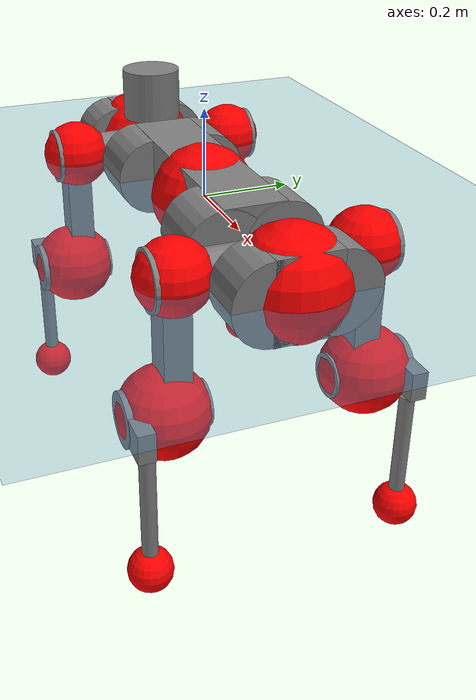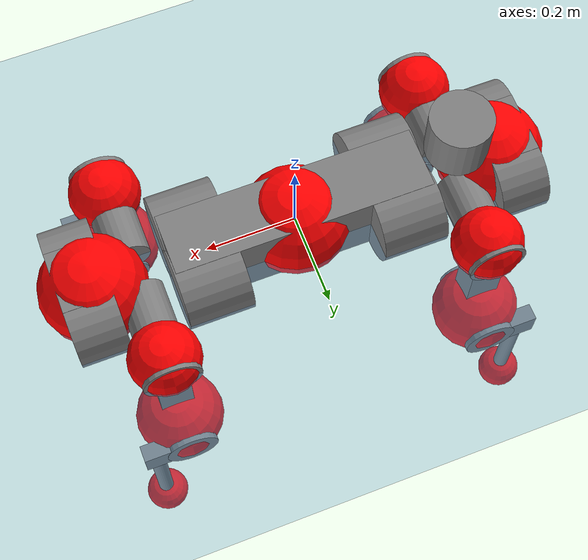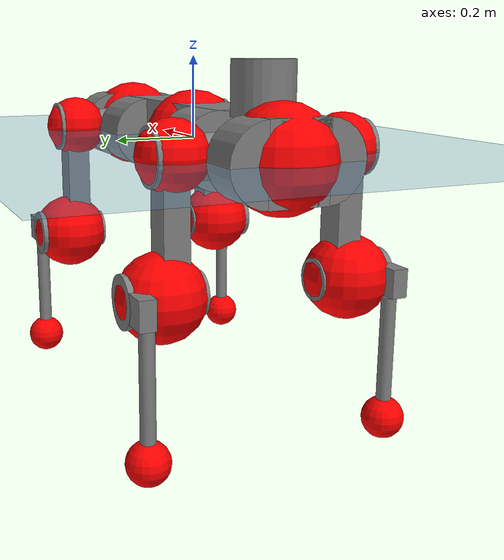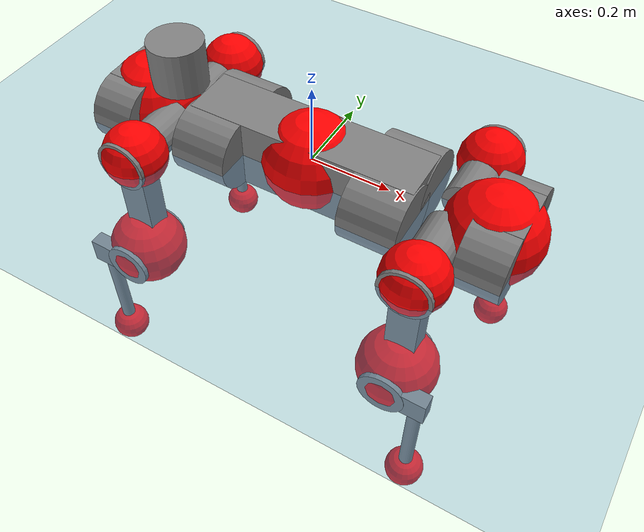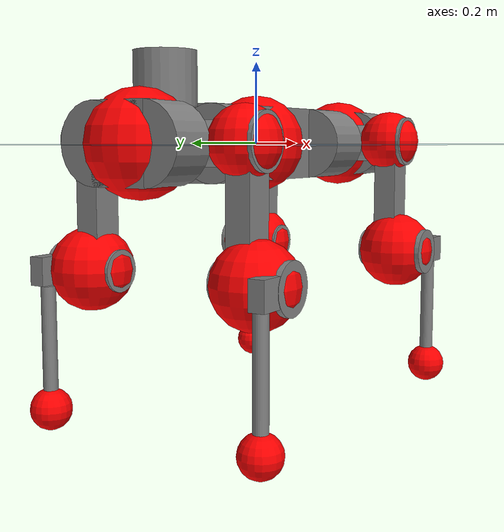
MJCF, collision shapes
<mujoco model="anymal_c">
  <compiler angle="radian" assetdir="assets" balanceinertia="true" inertiafromgeom="false"/>

  <option timestep="0.005" density="1.2" viscosity="2e-05"/>

  <size nkey="1"/>

  <visual>
    <quality shadowsize="8192"/>
    <map shadowclip="0.5"/>
  </visual>

  <default>
    <default class="/">
      <material specular="0" shininess="0.25"/>
      <geom contype="0" conaffinity="0" group="1" solref="-1000 -80"/>
      <site size="0.01 0.005 0.005" group="5"/>
      <general forcelimited="true" forcerange="-80 80" biastype="affine" gainprm="80" biasprm="0 -80 -2"/>
      <default class="anymal_c">
        <joint armature="0.01" damping="0.01" frictionloss="0.1"/>
        <default class="visual">
          <geom type="mesh" group="2"/>
          <default class="visual_zflip"/>
        </default>
        <default class="collision">
          <geom type="cylinder" group="3"/>
          <default class="foot">
            <geom size="0.03 0 0" type="sphere" condim="6" priority="1" friction="0.8 0.02 0.01" solimp="0.015 1 0.03"/>
          </default>
        </default>
      </default>
      <default class="reward_collision_sphere">
        <geom group="5" rgba="1 0 0 1"/>
      </default>
    </default>
  </default>

  <asset>
    <texture type="skybox" colorspace="auto" name="//unnamed_texture_0" builtin="gradient" rgb1="0.95 0.95 0.95" rgb2="0.95 0.95 0.95" width="100" height="600"/>
    <texture type="2d" colorspace="auto" name="texplane" builtin="checker" rgb1="0.345 0.575 0.748" rgb2="0.345 0.575 0.748" markrgb="1 1 1" width="512" height="512"/>
    <texture type="2d" colorspace="linear" name="base" file="base.png"/>
    <texture type="2d" colorspace="linear" name="top_shell" file="top_shell.png"/>
    <texture type="2d" colorspace="linear" name="bottom_shell" file="bottom_shell.png"/>
    <texture type="2d" colorspace="linear" name="remote" file="remote.png"/>
    <texture type="2d" colorspace="linear" name="hatch" file="hatch.png"/>
    <texture type="2d" colorspace="linear" name="handle" file="handle.png"/>
    <texture type="2d" colorspace="linear" name="face" file="face.png"/>
    <texture type="2d" colorspace="linear" name="battery" file="battery.png"/>
    <texture type="2d" colorspace="linear" name="lidar_cage" file="lidar_cage.png"/>
    <texture type="2d" colorspace="linear" name="depth_camera" file="depth_camera.png"/>
    <texture type="2d" colorspace="linear" name="wide_angle_camera" file="wide_angle_camera.png"/>
    <texture type="2d" colorspace="linear" name="lidar" file="lidar.png"/>
    <texture type="2d" colorspace="linear" name="drive" file="drive.png"/>
    <texture type="2d" colorspace="linear" name="hip_l" file="hip_l.png"/>
    <texture type="2d" colorspace="linear" name="shank_l" file="shank_l.png"/>
    <texture type="2d" colorspace="linear" name="foot" file="foot.png"/>
    <texture type="2d" colorspace="linear" name="thigh" file="thigh.png"/>
    <texture type="2d" colorspace="linear" name="shank_r" file="shank_r.png"/>
    <texture type="2d" colorspace="linear" name="hip_r" file="hip_r.png"/>
    <material name="MatPlane" class="/" texture="texplane" texuniform="true" texrepeat="2 2" specular="0.9" shininess="0.5"/>
    <material name="black_plastic" class="/" rgba="0.007 0.007 0.007 1"/>
    <material name="green" class="/" rgba="0.052 0.178 0.033 1"/>
    <material name="red" class="/" rgba="0.178 0.006 0.005 1"/>
    <material name="yellow" class="/" rgba="0.178 0.119 0.006 1"/>
    <material name="lwl" class="/" rgba="0.8 0.8 0.8 1"/>
    <material name="base" class="/" texture="base"/>
    <material name="top_shell" class="/" texture="top_shell"/>
    <material name="bottom_shell" class="/" texture="bottom_shell"/>
    <material name="hip_l" class="/" texture="hip_l"/>
    <material name="thigh" class="/" texture="thigh"/>
    <material name="shank_l" class="/" texture="shank_l"/>
    <material name="foot" class="/" texture="foot"/>
    <material name="hip_r" class="/" texture="hip_r"/>
    <material name="shank" class="/" texture="shank_r"/>
    <material name="hatch" class="/" texture="hatch"/>
    <material name="remote" class="/" texture="remote"/>
    <material name="handle" class="/" texture="handle"/>
    <material name="face" class="/" texture="face"/>
    <material name="depth_camera" class="/" texture="depth_camera"/>
    <material name="wide_angle_camera" class="/" texture="wide_angle_camera"/>
    <material name="battery" class="/" texture="battery"/>
    <material name="lidar_cage" class="/" texture="lidar_cage"/>
    <material name="lidar" class="/" texture="lidar"/>
    <material name="drive" class="/" texture="drive"/>
    <mesh name="base_0" class="/" file="base_0.obj"/>
    <mesh name="base_1" class="/" file="base_1.obj"/>
    <mesh name="base_2" class="/" file="base_2.obj"/>
    <mesh name="base_3" class="/" file="base_3.obj"/>
    <mesh name="base_4" class="/" file="base_4.obj"/>
    <mesh name="base_5" class="/" file="base_5.obj"/>
    <mesh name="top_shell" class="/" file="top_shell.obj"/>
    <mesh name="bottom_shell" class="/" file="bottom_shell.obj"/>
    <mesh name="remote" class="/" file="remote.obj"/>
    <mesh name="handle" class="/" file="handle.obj"/>
    <mesh name="face" class="/" file="face.obj"/>
    <mesh name="wide_angle_camera" class="/" file="wide_angle_camera.obj"/>
    <mesh name="depth_camera" class="/" file="depth_camera.obj"/>
    <mesh name="battery" class="/" file="battery.obj"/>
    <mesh name="lidar_cage" class="/" file="lidar_cage.obj"/>
    <mesh name="lidar" class="/" file="lidar.obj"/>
    <mesh name="drive" class="/" file="drive.obj"/>
    <mesh name="hip_l" class="/" file="hip_l.obj"/>
    <mesh name="thigh" class="/" file="thigh.obj"/>
    <mesh name="shank_l" class="/" file="shank_l.obj"/>
    <mesh name="foot" class="/" file="foot.obj"/>
    <mesh name="hip_r" class="/" file="hip_r.obj"/>
    <mesh name="hatch" class="/" file="hatch.obj"/>
    <mesh name="shank_r" class="/" file="shank_r.obj"/>
  </asset>

  <worldbody>
    <geom name="floor" class="/" size="100 100 0.125" type="plane" group="0" material="MatPlane"/>
    <light name="toplight_shadow" class="/" pos="0 0 5" dir="0.0990148 0.0990148 -0.990148" type="directional" ambient="0.04 0.04 0.04" diffuse="0.55 0.55 0.55" specular="0.12 0.12 0.12"/>
    <light name="toplight_fill" class="/" pos="0 0 5" dir="0.0990148 0.0990148 -0.990148" type="directional" castshadow="false" ambient="0.04 0.04 0.04" diffuse="0.3 0.3 0.3" specular="0.08 0.08 0.08"/>
    <body name="trunk" childclass="anymal_c" pos="-0.000403999 0.000120752 0.000229609" quat="1 0.000172972 8.08859e-05 -0.000117884">
      <inertial pos="0.00239201 -6.63778e-05 0.0511647" quat="0.501952 0.500104 0.498186 0.499751" mass="18.0844" diaginertia="0.640546 0.401331 0.258256"/>
      <joint name="//unnamed_joint_0" type="free" armature="0" damping="0" frictionloss="0"/>
      <geom name="//unnamed_geom_1" class="visual" material="green" mesh="base_0"/>
      <geom name="//unnamed_geom_2" class="visual" material="yellow" mesh="base_1"/>
      <geom name="//unnamed_geom_3" class="visual" material="red" mesh="base_2"/>
      <geom name="//unnamed_geom_4" class="visual" material="black_plastic" mesh="base_3"/>
      <geom name="//unnamed_geom_5" class="visual" material="lwl" mesh="base_4"/>
      <geom name="//unnamed_geom_6" class="visual" material="base" mesh="base_5"/>
      <geom name="trunk_1" class="collision" size="0.285902 0.0690109 0.0887283" type="box"/>
      <geom name="trunk_2" class="collision" size="0.0887283 0.0714756" pos="0.21828 0.0643076 0" quat="0.707107 0 0.707107 0"/>
      <geom name="trunk_3" class="collision" size="0.0887283 0.0714756" pos="-0.21828 0.0643076 0" quat="0.707107 0 0.707107 0"/>
      <geom name="trunk_4" class="collision" size="0.0887283 0.0714756" pos="0.21828 -0.0643076 0" quat="0.707107 0 0.707107 0"/>
      <geom name="trunk_5" class="collision" size="0.0887283 0.0714756" pos="-0.21828 -0.0643076 0" quat="0.707107 0 0.707107 0"/>
      <geom name="//unnamed_geom_12" class="visual" material="top_shell" mesh="top_shell"/>
      <geom name="//unnamed_geom_13" class="visual" material="bottom_shell" mesh="bottom_shell"/>
      <geom name="//unnamed_geom_14" class="visual" material="remote" mesh="remote"/>
      <geom name="//unnamed_geom_15" class="visual" material="handle" mesh="handle"/>
      <geom name="//unnamed_geom_16" class="visual" pos="0.415986 0 0" quat="1 0 0 0" material="face" mesh="face"/>
      <geom name="trunk_6" class="collision" size="0.0542228 0.0690109 0.0887283" pos="0.471184 0 0" type="box"/>
      <geom name="//unnamed_geom_18" class="collision" size="0.0887283 0.0542228" pos="0.471184 0.0643076 0" quat="0.707107 0 0.707107 0"/>
      <geom name="//unnamed_geom_19" class="collision" size="0.0887283 0.0542228" pos="0.471184 -0.0643076 0" quat="0.707107 0 0.707107 0"/>
      <geom name="//unnamed_geom_20" class="visual" pos="0.463307 0 -0.0304734" quat="0.965926 0 0.258819 0" material="depth_camera" mesh="depth_camera"/>
      <geom name="//unnamed_geom_21" class="visual" pos="0.51484 0 0.0154991" material="wide_angle_camera" mesh="wide_angle_camera"/>
      <geom name="//unnamed_geom_22" class="visual_zflip" pos="-0.415986 0 0" quat="0 0 0 1" material="face" mesh="face"/>
      <geom name="trunk_7" class="collision" size="0.0542228 0.0690109 0.0887283" pos="-0.471184 0 0" quat="0 0 0 1" type="box"/>
      <geom name="//unnamed_geom_24" class="collision" size="0.0887283 0.0542228" pos="-0.471184 -0.0643076 0" quat="0 -0.707107 0 0.707107"/>
      <geom name="//unnamed_geom_25" class="collision" size="0.0887283 0.0542228" pos="-0.471184 0.0643076 0" quat="0 -0.707107 0 0.707107"/>
      <geom name="//unnamed_geom_26" class="visual" pos="-0.463307 0 -0.0304734" quat="0 -0.258819 0 0.965926" material="depth_camera" mesh="depth_camera"/>
      <geom name="//unnamed_geom_27" class="visual_zflip" pos="-0.51484 0 0.0154991" quat="0 0 0 1" material="wide_angle_camera" mesh="wide_angle_camera"/>
      <geom name="//unnamed_geom_28" class="visual" material="battery" mesh="battery"/>
      <geom name="//unnamed_geom_29" class="visual" pos="0 0.0691294 0.0298354" quat="0.683013 -0.183013 0.183013 0.683013" material="depth_camera" mesh="depth_camera"/>
      <geom name="//unnamed_geom_30" class="visual" pos="0 -0.0691294 0.0298354" quat="0.683013 0.183013 0.183013 -0.683013" material="depth_camera" mesh="depth_camera"/>
      <geom name="//unnamed_geom_31" class="visual" pos="-0.365305 0 0.0760978" quat="1 0 0 0" material="lidar_cage" mesh="lidar_cage"/>
      <geom name="trunk_8" class="collision" size="0.0690109 0.0591522" pos="-0.365305 0 0.138218"/>
      <geom name="//unnamed_geom_33" class="visual" pos="-0.365305 -3.33574e-05 0.147226" quat="0.707107 0 0 -0.707107" material="lidar" mesh="lidar"/>
      <geom name="//unnamed_geom_34" class="visual" pos="0.300975 0.0955841 -2.01248e-09" quat="0.258819 0.965926 0 0" material="drive" mesh="drive"/>
      <geom name="//unnamed_geom_35" class="visual" pos="0.300975 -0.0955841 2.01248e-09" quat="0.258819 -0.965926 0 0" material="drive" mesh="drive"/>
      <geom name="//unnamed_geom_36" class="visual" pos="-0.300975 0.0955841 2.01248e-09" quat="0 0 0.965926 -0.258819" material="drive" mesh="drive"/>
      <geom name="//unnamed_geom_37" class="visual" pos="-0.300975 -0.0955841 -2.01248e-09" quat="0 0 -0.965926 -0.258819" material="drive" mesh="drive"/>
      <geom name="//unnamed_geom_38" class="visual" pos="0.116416 0 0.0755801" quat="1 0 0 0" material="hatch" mesh="hatch"/>
      <geom name="//unnamed_geom_39" class="reward_collision_sphere" size="0.118304"/>
      <geom name="//unnamed_geom_40" class="reward_collision_sphere" size="0.118304" pos="0.451614 0 0"/>
      <geom name="//unnamed_geom_41" class="reward_collision_sphere" size="0.118304" pos="-0.451614 0 0"/>
      <site name="imu" pos="0.252094 0.00834035 0.0474846" size="0.0098587"/>
      <camera name="track" pos="0 -1.83736 0" quat="0.707107 0.707107 0 0" mode="trackcom"/>
      <camera name="ego_camera" pos="0.451614 0 -0.0414138" quat="-0.5 -0.5 0.5 0.5"/>
      <body name="LF_HIP" pos="0.301429 0.095845 0.000874892" quat="0.258559 0.965995 8.51174e-06 -3.86314e-05">
        <inertial pos="0.0570599 -0.0139274 -0.00838919" quat="-0.128533 0.709896 -0.135499 0.679093" mass="2.64797" diaginertia="0.00592927 0.0032482 0.00391973"/>
        <joint name="LF_HAA" pos="0 0 0" axis="0.999984 0.00459512 -0.00339105" range="-0.714278 0.489685" armature="0.00987341" damping="0.0112491" frictionloss="0.096842"/>
        <geom name="//unnamed_geom_42" class="visual" pos="0 -0.000118385 1.94446e-05" quat="0.258819 -0.965926 0 0" material="hip_l" mesh="hip_l"/>
        <geom name="//unnamed_geom_43" class="visual" pos="0.0601148 -0.0717654 -0.0422967" quat="0.183013 -0.683013 0.683013 0.183013" material="drive" mesh="drive"/>
        <geom name="//unnamed_geom_44" class="collision" size="0.0492935 0.0690109" pos="0.0601148 -0.0109872 -0.00714905" quat="-0.353553 -0.612372 0.612372 -0.353553"/>
        <body name="LF_THIGH" pos="0.0611342 -0.0670839 -0.0430841" quat="0.183039 -0.68298 0.683047 0.18298">
          <inertial pos="0.0310581 0.000126271 -0.254593" quat="0.993297 -0.00443856 -0.0800282 0.0832855" mass="2.92988" diaginertia="0.0307428 0.0194764 0.00494495"/>
          <joint name="LF_HFE" pos="0 0 0" axis="0.999994 -0.00159315 0.00320309" stiffness="0.00015624" range="-3.14032 3.13744" armature="0.00950307" damping="0.0123449" frictionloss="0.101933"/>
          <geom name="//unnamed_geom_45" class="visual" pos="0.0016893 2.66194e-06 0" quat="0.707107 0 0 -0.707107" material="thigh" mesh="thigh"/>
          <geom name="//unnamed_geom_46" class="collision" size="0.0640815 0.0394348" pos="0.0401434 0 0" quat="0.5 0.5 -0.5 -0.5"/>
          <geom name="//unnamed_geom_47" class="collision" size="0.0369701 0.0295761 0.139317" pos="0.0301076 0 -0.146309" quat="0.707107 0 0 -0.707107" type="box"/>
          <geom name="//unnamed_geom_48" class="visual" pos="0.10066 0 -0.295073" quat="1 0 0 0" material="drive" mesh="drive"/>
          <geom name="//unnamed_geom_49" class="collision" size="0.0492935 0.0690109" pos="0.0304087 0 -0.295073" quat="0.707107 0 0.707107 0"/>
          <geom name="//unnamed_geom_50" class="reward_collision_sphere" size="0.0788696" pos="0.0250897 0 0"/>
          <body name="LF_SHANK" pos="0.100727 -0.000731997 -0.295653" quat="1 -0.000293932 3.31643e-05 -0.000348026">
            <inertial pos="0.00513443 -0.0566406 -0.0836593" quat="0.99288 -0.116272 -0.000784624 -0.0258847" mass="0.55327" diaginertia="0.0103566 0.00597974 0.00132945"/>
            <joint name="LF_KFE" pos="0 0 0" axis="0.999999 0.00100759 0.00124842" range="-3.14205 3.13811" armature="0.00977957" damping="0.0128277" frictionloss="0.0970851"/>
            <geom name="//unnamed_geom_51" class="visual" pos="0.000550845 0.00293713 0" quat="0.707107 0 0 -0.707107" material="shank_l" mesh="shank_l"/>
            <geom name="LF_kfe_act" class="collision" size="0.0591522 0.0197174" pos="0.0200717 0 0" quat="0.5 0.5 -0.5 -0.5"/>
            <geom name="//unnamed_geom_53" class="collision" size="0.0566865 0.0332731 0.0187315" pos="0.0200717 -0.0528232 0" quat="0.5 0.5 -0.5 -0.5" type="box"/>
            <geom name="//unnamed_geom_54" class="visual" pos="0.0130967 -0.0798514 -0.349915" quat="0.382683 0 0 -0.92388" material="foot" mesh="foot"/>
            <geom name="LF_calf" class="collision" size="0.0172527 0.139256" pos="0.0130968 -0.0807979 -0.174958" quat="0.707107 0 0 -0.707107"/>
            <geom name="LF_foot" class="foot" size="0.0295542" pos="0.0130968 -0.0807979 -0.32662" quat="0.707107 0 0 -0.707107"/>
            <geom name="//unnamed_geom_57" class="reward_collision_sphere" size="0.098587" pos="-0.0501793 0 0"/>
            <geom name="//unnamed_geom_58" class="reward_collision_sphere" size="0.0492935" pos="0.0130968 -0.0807979 -0.32662"/>
            <site name="LF_foot" class="foot" pos="0.0130968 -0.0807979 -0.32662" quat="0.707107 0 0 -0.707107" size="0.0098587"/>
          </body>
        </body>
      </body>
      <body name="RF_HIP" pos="0.301414 -0.0956986 0.00069195" quat="0.258899 -0.965904 0.000205986 7.70559e-05">
        <inertial pos="0.0571898 0.0148441 -0.00846035" quat="0.136464 0.676536 0.129869 0.711907" mass="2.6608" diaginertia="0.00597257 0.00325293 0.00391506"/>
        <joint name="RF_HAA" pos="0 0 0" axis="1 2.3558e-05 -0.00030186" range="-0.49044 0.717821" armature="0.00989607" damping="0.00855383" frictionloss="0.101776"/>
        <geom name="//unnamed_geom_59" class="visual" pos="0 0.000118384 1.94446e-05" quat="0.258819 0.965926 0 0" material="hip_r" mesh="hip_r"/>
        <geom name="//unnamed_geom_60" class="visual" pos="0.0601148 0.0717654 -0.0422967" quat="0.183013 0.683013 0.683013 -0.183013" material="drive" mesh="drive"/>
        <geom name="//unnamed_geom_61" class="collision" size="0.0492935 0.0690109" pos="0.0601148 0.0109872 -0.00714905" quat="-0.353553 0.612372 0.612372 0.353553"/>
        <body name="RF_THIGH" pos="0.0604731 0.0669153 -0.0441832" quat="0.183267 0.682961 0.683031 -0.182885">
          <inertial pos="0.0314298 0.000520365 -0.253723" quat="0.992771 -0.00515991 -0.0807496 0.0886462" mass="2.95597" diaginertia="0.030767 0.019659 0.00500476"/>
          <joint name="RF_HFE" pos="0 0 0" axis="1 -0.000453341 0.000567589" stiffness="0.00719991" range="-3.13806 3.1301" armature="0.00961102" damping="0.011956" frictionloss="0.0997283"/>
          <geom name="//unnamed_geom_62" class="visual" pos="0.0016893 2.66194e-06 0" quat="0.707107 0 0 -0.707107" material="thigh" mesh="thigh"/>
          <geom name="//unnamed_geom_63" class="collision" size="0.0640815 0.0394348" pos="0.0401434 0 0" quat="0.5 0.5 0.5 0.5"/>
          <geom name="//unnamed_geom_64" class="collision" size="0.0369701 0.0295761 0.139317" pos="0.0301076 0 -0.146309" quat="0.707107 0 0 0.707107" type="box"/>
          <geom name="//unnamed_geom_65" class="visual" pos="0.10066 0 -0.295073" quat="1 0 0 0" material="drive" mesh="drive"/>
          <geom name="//unnamed_geom_66" class="collision" size="0.0492935 0.0690109" pos="0.0304087 0 -0.295073" quat="0.707107 0 0.707107 0"/>
          <geom name="//unnamed_geom_67" class="reward_collision_sphere" size="0.0788696" pos="0.0250897 0 0"/>
          <body name="RF_SHANK" pos="0.100288 0.000640753 -0.295934" quat="1 6.02484e-05 -0.000126281 4.78674e-05">
            <inertial pos="0.00639461 0.0571524 -0.0839345" quat="0.993012 0.115324 -0.00142711 0.0250189" mass="0.568541" diaginertia="0.0102928 0.00600504 0.00133574"/>
            <joint name="RF_KFE" pos="0 0 0" axis="1 -0.000208315 -0.000219008" range="-3.13099 3.14104" armature="0.00982965" damping="0.00749403" frictionloss="0.0962663"/>
            <geom name="//unnamed_geom_68" class="visual" pos="0.000550842 -0.00293713 0" quat="0.707107 0 0 0.707107" material="shank" mesh="shank_r"/>
            <geom name="RF_kfe_act" class="collision" size="0.0591522 0.0197174" pos="0.0200717 0 0" quat="0.5 0.5 0.5 0.5"/>
            <geom name="//unnamed_geom_70" class="collision" size="0.0566865 0.0332731 0.0187315" pos="0.0200717 0.0528232 0" quat="0.5 0.5 0.5 0.5" type="box"/>
            <geom name="//unnamed_geom_71" class="visual" pos="0.0130969 0.0798514 -0.349915" quat="0.382683 0 0 0.92388" material="foot" mesh="foot"/>
            <geom name="RF_calf" class="collision" size="0.0172527 0.139256" pos="0.0130968 0.0807979 -0.174958" quat="0.707107 0 0 0.707107"/>
            <geom name="RF_foot" class="foot" size="0.0297587" pos="0.0130968 0.0807979 -0.32662" quat="0.707107 0 0 0.707107"/>
            <geom name="//unnamed_geom_74" class="reward_collision_sphere" size="0.098587" pos="-0.0501793 0 0"/>
            <geom name="//unnamed_geom_75" class="reward_collision_sphere" size="0.0492935" pos="0.0130968 0.0807979 -0.32662"/>
            <site name="RF_foot" class="foot" pos="0.0130968 0.0807979 -0.32662" quat="0.707107 0 0 0.707107" size="0.0098587"/>
          </body>
        </body>
      </body>
      <body name="LH_HIP" pos="-0.299628 0.0963814 0.000650005" quat="-7.11606e-05 -5.4631e-05 0.965894 -0.258939">
        <inertial pos="0.0569805 0.0132438 -0.00873215" quat="0.134168 0.68089 0.127875 0.708544" mass="2.6799" diaginertia="0.00593815 0.00322571 0.0039489"/>
        <joint name="LH_HAA" pos="0 0 0" axis="1 -0.000694176 -0.000193457" range="-0.510813 0.723275" armature="0.0098369" damping="0.00887455" frictionloss="0.0970517"/>
        <geom name="//unnamed_geom_76" class="visual" pos="0 0.000118384 1.94446e-05" quat="-0.258819 -0.965926 0 0" material="hip_r" mesh="hip_r"/>
        <geom name="//unnamed_geom_77" class="visual" pos="0.0601148 0.0717654 -0.0422967" quat="0.183013 0.683013 0.683013 -0.183013" material="drive" mesh="drive"/>
        <geom name="//unnamed_geom_78" class="collision" size="0.0492935 0.0690109" pos="0.0601148 0.0109872 -0.00714905" quat="-0.353553 0.612372 0.612372 0.353553"/>
        <body name="LH_THIGH" pos="0.0591829 0.0664165 -0.0441346" quat="0.182981 0.683135 0.682912 -0.182963">
          <inertial pos="0.0313227 -4.11593e-05 -0.254384" quat="0.993181 -0.00345357 -0.077335 0.0871659" mass="2.92262" diaginertia="0.0307872 0.0193133 0.00489946"/>
          <joint name="LH_HFE" pos="0 0 0" axis="0.999995 -0.00113947 0.00280932" range="-3.15895 3.12372" armature="0.00973302" damping="0.00994759" frictionloss="0.0955229"/>
          <geom name="//unnamed_geom_79" class="visual" pos="0.0016893 2.66194e-06 0" quat="0.707107 0 0 -0.707107" material="thigh" mesh="thigh"/>
          <geom name="//unnamed_geom_80" class="collision" size="0.0640815 0.0394348" pos="0.0401434 0 0" quat="0.5 0.5 -0.5 -0.5"/>
          <geom name="//unnamed_geom_81" class="collision" size="0.0369701 0.0295761 0.139317" pos="0.0301076 0 -0.146309" quat="0.707107 0 0 -0.707107" type="box"/>
          <geom name="//unnamed_geom_82" class="visual" pos="0.10066 0 -0.295073" quat="1 0 0 0" material="drive" mesh="drive"/>
          <geom name="//unnamed_geom_83" class="collision" size="0.0492935 0.0690109" pos="0.0304087 0 -0.295073" quat="0.707107 0 0.707107 0"/>
          <geom name="//unnamed_geom_84" class="reward_collision_sphere" size="0.0788696" pos="0.0250897 0 0"/>
          <body name="LH_SHANK" pos="0.101261 -0.0014362 -0.295553" quat="1 0.000291887 0.000145903 -8.17342e-05">
            <inertial pos="0.00519304 0.0562323 -0.0828205" quat="0.993195 0.114062 -0.00197563 0.0234566" mass="0.564722" diaginertia="0.0103017 0.00604872 0.00133244"/>
            <joint name="LH_KFE" pos="0 0 0" axis="0.999995 -0.00143584 -0.00276824" stiffness="0.000554741" range="-3.13781 3.1569" armature="0.0100728" damping="0.00907459" frictionloss="0.102505"/>
            <geom name="//unnamed_geom_85" class="visual" pos="0.000550842 -0.00293713 0" quat="-0.707107 0 0 -0.707107" material="shank" mesh="shank_r"/>
            <geom name="LH_kfe_act" class="collision" size="0.0591522 0.0197174" pos="0.0200717 0 0" quat="0.5 0.5 -0.5 -0.5"/>
            <geom name="//unnamed_geom_87" class="collision" size="0.0566865 0.0332731 0.0187315" pos="0.0200717 0.0528232 0" quat="0.5 0.5 -0.5 -0.5" type="box"/>
            <geom name="//unnamed_geom_88" class="visual" pos="0.0130969 0.0798514 -0.349915" quat="-0.382683 0 0 -0.92388" material="foot" mesh="foot"/>
            <geom name="LH_calf" class="collision" size="0.0172527 0.139256" pos="0.0130968 0.0807979 -0.174958" quat="0.707107 0 0 -0.707107"/>
            <geom name="LH_foot" class="foot" size="0.0318431" pos="0.0130968 0.0807979 -0.32662" quat="0.707107 0 0 -0.707107"/>
            <geom name="//unnamed_geom_91" class="reward_collision_sphere" size="0.098587" pos="-0.0501793 0 0"/>
            <geom name="//unnamed_geom_92" class="reward_collision_sphere" size="0.0492935" pos="0.0130968 0.0807979 -0.32662"/>
            <site name="LH_foot" class="foot" pos="0.0130968 0.0807979 -0.32662" quat="0.707107 0 0 -0.707107" size="0.0098587"/>
          </body>
        </body>
      </body>
      <body name="RH_HIP" pos="-0.301027 -0.0954285 -1.63514e-05" quat="-1.77353e-06 1.79712e-06 -0.965929 -0.258808">
        <inertial pos="0.0560115 -0.0146198 -0.00872677" quat="-0.1281 0.709786 -0.135286 0.679332" mass="2.66081" diaginertia="0.0058989 0.00317758 0.00386725"/>
        <joint name="RH_HAA" pos="0 0 0" axis="0.999997 0.00182841 0.00160812" range="-0.723146 0.498548" armature="0.00969107" damping="0.0091698" frictionloss="0.0995594"/>
        <geom name="//unnamed_geom_93" class="visual" pos="0 -0.000118385 1.94446e-05" quat="-0.258819 0.965926 0 0" material="hip_l" mesh="hip_l"/>
        <geom name="//unnamed_geom_94" class="visual" pos="0.0601148 -0.0717654 -0.0422967" quat="-0.183013 0.683013 -0.683013 -0.183013" material="drive" mesh="drive"/>
        <geom name="//unnamed_geom_95" class="collision" size="0.0492935 0.0690109" pos="0.0601148 -0.0109872 -0.00714905" quat="0.353553 0.612372 -0.612372 0.353553"/>
        <body name="RH_THIGH" pos="0.0600467 -0.0668175 -0.0439446" quat="-0.182878 0.6831 -0.682999 -0.182873">
          <inertial pos="0.0316415 0.000284437 -0.253803" quat="0.993386 -0.00464554 -0.0800456 0.0821858" mass="2.92515" diaginertia="0.0307661 0.0193953 0.00500786"/>
          <joint name="RH_HFE" pos="0 0 0" axis="0.999999 -0.000521777 0.00103002" range="-3.13875 3.14538" armature="0.00957227" damping="0.00870622" frictionloss="0.100599"/>
          <geom name="//unnamed_geom_96" class="visual" pos="0.0016893 2.66194e-06 0" quat="0.707107 0 0 -0.707107" material="thigh" mesh="thigh"/>
          <geom name="//unnamed_geom_97" class="collision" size="0.0640815 0.0394348" pos="0.0401434 0 0" quat="0.5 0.5 0.5 0.5"/>
          <geom name="//unnamed_geom_98" class="collision" size="0.0369701 0.0295761 0.139317" pos="0.0301076 0 -0.146309" quat="0.707107 0 0 0.707107" type="box"/>
          <geom name="//unnamed_geom_99" class="visual" pos="0.10066 0 -0.295073" quat="1 0 0 0" material="drive" mesh="drive"/>
          <geom name="//unnamed_geom_100" class="collision" size="0.0492935 0.0690109" pos="0.0304087 0 -0.295073" quat="0.707107 0 0.707107 0"/>
          <geom name="//unnamed_geom_101" class="reward_collision_sphere" size="0.0788696" pos="0.0250897 0 0"/>
          <body name="RH_SHANK" pos="0.100162 0.000428894 -0.295124" quat="1 -1.10276e-05 7.70419e-07 8.6424e-06">
            <inertial pos="0.00604231 -0.0563509 -0.083638" quat="0.993 -0.115439 -0.00121995 -0.0249764" mass="0.561495" diaginertia="0.0104967 0.00602617 0.00133838"/>
            <joint name="RH_KFE" pos="0 0 0" axis="0.999998 0.00185871 -0.000956487" range="-3.13853 3.13343" armature="0.00981541" damping="0.011037" frictionloss="0.0987137"/>
            <geom name="//unnamed_geom_102" class="visual" pos="0.000550845 0.00293713 0" quat="0.707107 0 0 -0.707107" material="shank_l" mesh="shank_l"/>
            <geom name="RH_kfe_act" class="collision" size="0.0591522 0.0197174" pos="0.0200717 0 0" quat="0.5 0.5 0.5 0.5"/>
            <geom name="//unnamed_geom_104" class="collision" size="0.0566865 0.0332731 0.0187315" pos="0.0200717 -0.0528232 0" quat="0.5 0.5 0.5 0.5" type="box"/>
            <geom name="//unnamed_geom_105" class="visual" pos="0.0130967 -0.0798514 -0.349915" quat="0.382683 0 0 -0.92388" material="foot" mesh="foot"/>
            <geom name="RH_calf" class="collision" size="0.0172527 0.139256" pos="0.0130968 -0.0807979 -0.174958" quat="0.707107 0 0 0.707107"/>
            <geom name="RH_foot" class="foot" size="0.0273328" pos="0.0130968 -0.0807979 -0.32662" quat="0.707107 0 0 0.707107"/>
            <geom name="//unnamed_geom_108" class="reward_collision_sphere" size="0.098587" pos="-0.0501793 0 0"/>
            <geom name="//unnamed_geom_109" class="reward_collision_sphere" size="0.0492935" pos="0.0130968 -0.0807979 -0.32662"/>
            <site name="RH_foot" class="foot" pos="0.0130968 -0.0807979 -0.32662" quat="0.707107 0 0 0.707107" size="0.0098587"/>
          </body>
        </body>
      </body>
    </body>
  </worldbody>

  <contact>
    <pair class="/" geom1="floor" geom2="LF_foot" name="//unnamed_contact_0"/>
    <pair class="/" geom1="floor" geom2="RF_foot" name="//unnamed_contact_1"/>
    <pair class="/" geom1="floor" geom2="LH_foot" name="//unnamed_contact_2"/>
    <pair class="/" geom1="floor" geom2="RH_foot" name="//unnamed_contact_3"/>
  </contact>

  <actuator>
    <general name="LF_HAA" class="/" joint="LF_HAA" forcerange="-79.3418 79.3418" gainprm="79.3721" biasprm="0 -79.3721 -1.89895"/>
    <general name="LF_HFE" class="/" joint="LF_HFE" forcerange="-80.9204 80.9204" gainprm="79.3721" biasprm="0 -79.3721 -1.89895"/>
    <general name="LF_KFE" class="/" joint="LF_KFE" forcerange="-78.4195 78.4195" gainprm="79.3721" biasprm="0 -79.3721 -1.89895"/>
    <general name="RF_HAA" class="/" joint="RF_HAA" forcerange="-79.2183 79.2183" gainprm="79.3721" biasprm="0 -79.3721 -1.89895"/>
    <general name="RF_HFE" class="/" joint="RF_HFE" forcerange="-80.7689 80.7689" gainprm="79.3721" biasprm="0 -79.3721 -1.89895"/>
    <general name="RF_KFE" class="/" joint="RF_KFE" forcerange="-76.7044 76.7044" gainprm="79.3721" biasprm="0 -79.3721 -1.89895"/>
    <general name="LH_HAA" class="/" joint="LH_HAA" forcerange="-79.3837 79.3837" gainprm="79.3721" biasprm="0 -79.3721 -1.89895"/>
    <general name="LH_HFE" class="/" joint="LH_HFE" forcerange="-76.7727 76.7727" gainprm="79.3721" biasprm="0 -79.3721 -1.89895"/>
    <general name="LH_KFE" class="/" joint="LH_KFE" forcerange="-80.8481 80.8481" gainprm="79.3721" biasprm="0 -79.3721 -1.89895"/>
    <general name="RH_HAA" class="/" joint="RH_HAA" forcerange="-78.8854 78.8854" gainprm="79.3721" biasprm="0 -79.3721 -1.89895"/>
    <general name="RH_HFE" class="/" joint="RH_HFE" forcerange="-80.0983 80.0983" gainprm="79.3721" biasprm="0 -79.3721 -1.89895"/>
    <general name="RH_KFE" class="/" joint="RH_KFE" forcerange="-78.0674 78.0674" gainprm="79.3721" biasprm="0 -79.3721 -1.89895"/>
  </actuator>

  <sensor>
    <gyro site="imu" name="imu_angular_velocity"/>
    <velocimeter site="imu" name="imu_linear_velocity"/>
    <framelinvel objtype="site" objname="LF_foot" name="LF_foot_global_linear_velocity"/>
    <framelinvel objtype="site" objname="RF_foot" name="RF_foot_global_linear_velocity"/>
    <framelinvel objtype="site" objname="LH_foot" name="LH_foot_global_linear_velocity"/>
    <framelinvel objtype="site" objname="RH_foot" name="RH_foot_global_linear_velocity"/>
  </sensor>

  <keyframe>
    <key name="home" qpos="0 0 0.55 1 0 0 0 0 0.4 -0.8 0 -0.4 0.8 0 -0.4 0.8 0 0.4 -0.8"/>
  </keyframe>
</mujoco>
